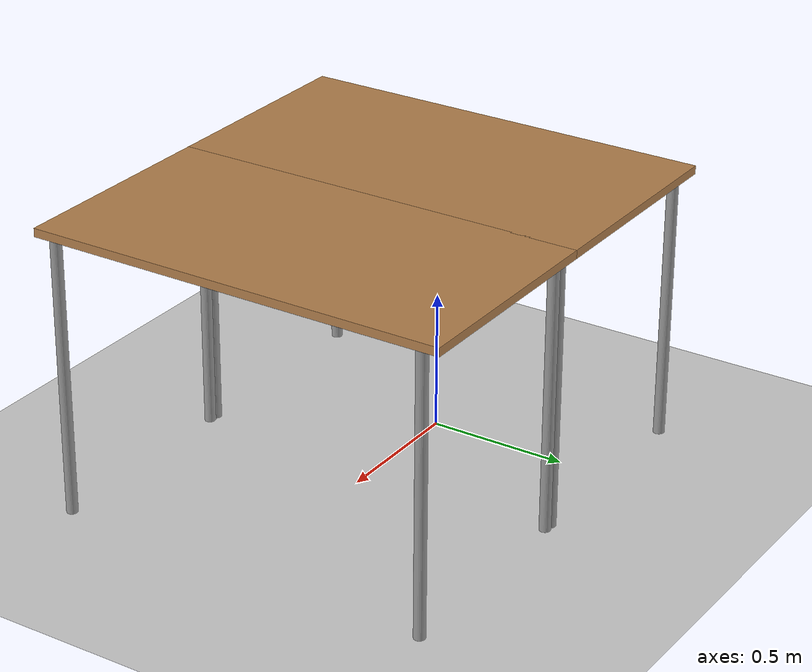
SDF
<sdf version="1.6">
 <world name="default">
  <light name="sun" type="directional">
   <pose>0 0 10 0 -0 0</pose>
   <diffuse>0.8 0.8 0.8 1</diffuse>
   <specular>0.2 0.2 0.2 1</specular>
   <attenuation>
    <range>1000</range>
    <constant>0.9</constant>
    <linear>0.01</linear>
    <quadratic>0.001</quadratic>
   </attenuation>
   <direction>-0.5 0.1 -0.9</direction>
  </light>
  <model name="ground_plane">
   <static>1</static>
   <link name="link">
    <collision name="collision">
     <geometry><plane><normal>0 0 1</normal><size>100 100</size></plane></geometry>
     <surface>
      <contact><collide_bitmask>65535</collide_bitmask></contact>
      <friction><ode><mu>100</mu><mu2>50</mu2></ode></friction>
     </surface>
    </collision>
    <visual name="visual">
     <cast_shadows>0</cast_shadows>
     <geometry><plane><normal>0 0 1</normal><size>100 100</size></plane></geometry>
     <material>
      <script><uri>file://media/materials/scripts/gazebo.material</uri><name>Gazebo/Grey</name></script>
     </material>
    </visual>
   </link>
  </model>
  <gravity>0 0 -9.8</gravity>
  <magnetic_field>6e-06 2.3e-05 -4.2e-05</magnetic_field>
  <atmosphere type="adiabatic"/>
  <physics name="default_physics" default="0" type="ode">
   <max_step_size>0.001</max_step_size>
   <real_time_factor>1</real_time_factor>
   <real_time_update_rate>1000</real_time_update_rate>
  </physics>
  <scene><ambient>0.4 0.4 0.4 1</ambient><background>0.7 0.7 0.7 1</background><shadows>1</shadows></scene>
  <audio><device>default</device></audio>
  <spherical_coordinates>
   <surface_model>EARTH_WGS84</surface_model>
   <latitude_deg>0</latitude_deg>
   <longitude_deg>0</longitude_deg>
   <elevation>0</elevation>
   <heading_deg>0</heading_deg>
  </spherical_coordinates>
  <model name="model_table2">
   <static>1</static>
   <link name="link">
    <collision name="surface">
     <pose>0 0 1 0 -0 0</pose>
     <geometry><box><size>1.5 0.8 0.03</size></box></geometry>
     <surface><friction><ode><mu>0.6</mu><mu2>0.6</mu2></ode></friction></surface>
    </collision>
    <visual name="visual1">
     <pose>0 0 1 0 -0 0</pose>
     <geometry><box><size>1.5 0.8 0.03</size></box></geometry>
     <material>
      <diffuse>1 1 1 1</diffuse>
      <script><uri>file://media/materials/scripts/gazebo.material</uri><name>Gazebo/Wood</name></script>
     </material>
    </visual>
    <collision name="front_left_leg">
     <pose>0.68 0.38 0.5 0 -0 0</pose>
     <geometry><cylinder><radius>0.02</radius><length>1</length></cylinder></geometry>
    </collision>
    <visual name="front_left_leg">
     <pose>0.68 0.38 0.5 0 -0 0</pose>
     <geometry><cylinder><radius>0.02</radius><length>1</length></cylinder></geometry>
     <material>
      <diffuse>0.5 0.5 0.5 1</diffuse>
      <script><uri>file://media/materials/scripts/gazebo.material</uri><name>Gazebo/Grey</name></script>
     </material>
    </visual>
    <collision name="front_right_leg">
     <pose>0.68 -0.38 0.5 0 -0 0</pose>
     <geometry><cylinder><radius>0.02</radius><length>1</length></cylinder></geometry>
    </collision>
    <visual name="front_right_leg">
     <pose>0.68 -0.38 0.5 0 -0 0</pose>
     <geometry><cylinder><radius>0.02</radius><length>1</length></cylinder></geometry>
     <material>
      <diffuse>0.5 0.5 0.5 1</diffuse>
      <script><uri>file://media/materials/scripts/gazebo.material</uri><name>Gazebo/Grey</name></script>
     </material>
    </visual>
    <collision name="back_right_leg">
     <pose>-0.68 -0.38 0.5 0 -0 0</pose>
     <geometry><cylinder><radius>0.02</radius><length>1</length></cylinder></geometry>
    </collision>
    <visual name="back_right_leg">
     <pose>-0.68 -0.38 0.5 0 -0 0</pose>
     <geometry><cylinder><radius>0.02</radius><length>1</length></cylinder></geometry>
     <material>
      <diffuse>0.5 0.5 0.5 1</diffuse>
      <script><uri>file://media/materials/scripts/gazebo.material</uri><name>Gazebo/Grey</name></script>
     </material>
    </visual>
    <collision name="back_left_leg">
     <pose>-0.68 0.38 0.5 0 -0 0</pose>
     <geometry><cylinder><radius>0.02</radius><length>1</length></cylinder></geometry>
    </collision>
    <visual name="back_left_leg">
     <pose>-0.68 0.38 0.5 0 -0 0</pose>
     <geometry><cylinder><radius>0.02</radius><length>1</length></cylinder></geometry>
     <material>
      <diffuse>0.5 0.5 0.5 1</diffuse>
      <script><uri>file://media/materials/scripts/gazebo.material</uri><name>Gazebo/Grey</name></script>
     </material>
    </visual>
   </link>
   <pose>0.794 0 0 0 -0 1.5708</pose>
  </model>
  <model name="model_table1">
   <static>1</static>
   <link name="link">
    <collision name="surface">
     <pose>0 0 1 0 -0 0</pose>
     <geometry><box><size>1.5 0.8 0.03</size></box></geometry>
     <surface><friction><ode><mu>0.6</mu><mu2>0.6</mu2></ode></friction></surface>
    </collision>
    <visual name="visual1">
     <pose>0 0 1 0 -0 0</pose>
     <geometry><box><size>1.5 0.8 0.03</size></box></geometry>
     <material>
      <diffuse>1 1 1 1</diffuse>
      <script><uri>file://media/materials/scripts/gazebo.material</uri><name>Gazebo/Wood</name></script>
     </material>
    </visual>
    <collision name="front_left_leg">
     <pose>0.68 0.38 0.5 0 -0 0</pose>
     <geometry><cylinder><radius>0.02</radius><length>1</length></cylinder></geometry>
    </collision>
    <visual name="front_left_leg">
     <pose>0.68 0.38 0.5 0 -0 0</pose>
     <geometry><cylinder><radius>0.02</radius><length>1</length></cylinder></geometry>
     <material>
      <diffuse>0.5 0.5 0.5 1</diffuse>
      <script><uri>file://media/materials/scripts/gazebo.material</uri><name>Gazebo/Grey</name></script>
     </material>
    </visual>
    <collision name="front_right_leg">
     <pose>0.68 -0.38 0.5 0 -0 0</pose>
     <geometry><cylinder><radius>0.02</radius><length>1</length></cylinder></geometry>
    </collision>
    <visual name="front_right_leg">
     <pose>0.68 -0.38 0.5 0 -0 0</pose>
     <geometry><cylinder><radius>0.02</radius><length>1</length></cylinder></geometry>
     <material>
      <diffuse>0.5 0.5 0.5 1</diffuse>
      <script><uri>file://media/materials/scripts/gazebo.material</uri><name>Gazebo/Grey</name></script>
     </material>
    </visual>
    <collision name="back_right_leg">
     <pose>-0.68 -0.38 0.5 0 -0 0</pose>
     <geometry><cylinder><radius>0.02</radius><length>1</length></cylinder></geometry>
    </collision>
    <visual name="back_right_leg">
     <pose>-0.68 -0.38 0.5 0 -0 0</pose>
     <geometry><cylinder><radius>0.02</radius><length>1</length></cylinder></geometry>
     <material>
      <diffuse>0.5 0.5 0.5 1</diffuse>
      <script><uri>file://media/materials/scripts/gazebo.material</uri><name>Gazebo/Grey</name></script>
     </material>
    </visual>
    <collision name="back_left_leg">
     <pose>-0.68 0.38 0.5 0 -0 0</pose>
     <geometry><cylinder><radius>0.02</radius><length>1</length></cylinder></geometry>
    </collision>
    <visual name="back_left_leg">
     <pose>-0.68 0.38 0.5 0 -0 0</pose>
     <geometry><cylinder><radius>0.02</radius><length>1</length></cylinder></geometry>
     <material>
      <diffuse>0.5 0.5 0.5 1</diffuse>
      <script><uri>file://media/materials/scripts/gazebo.material</uri><name>Gazebo/Grey</name></script>
     </material>
    </visual>
   </link>
   <pose>0 0 0 0 -0 1.5708</pose>
  </model>
  <light name="user_directional_light_0" type="directional">
   <pose>-9.39363 -9.22875 1 0 -0 0</pose>
   <diffuse>0.5 0.5 0.5 1</diffuse>
   <specular>0.1 0.1 0.1 1</specular>
   <direction>0.1 0.1 -0.9</direction>
   <attenuation>
    <range>20</range>
    <constant>0.5</constant>
    <linear>0.01</linear>
    <quadratic>0.001</quadratic>
   </attenuation>
  </light>
  <light name="user_directional_light_1" type="directional">
   <pose>-9.34577 9.38126 1 0 -0 0</pose>
   <diffuse>0.5 0.5 0.5 1</diffuse>
   <specular>0.1 0.1 0.1 1</specular>
   <direction>0.1 0.1 -0.9</direction>
   <attenuation>
    <range>20</range>
    <constant>0.5</constant>
    <linear>0.01</linear>
    <quadratic>0.001</quadratic>
   </attenuation>
  </light>
  <light name="user_directional_light_2" type="directional">
   <pose>9.27767 -9.30726 1 0 -0 0</pose>
   <diffuse>0.5 0.5 0.5 1</diffuse>
   <specular>0.1 0.1 0.1 1</specular>
   <direction>0.1 0.1 -0.9</direction>
   <attenuation>
    <range>20</range>
    <constant>0.5</constant>
    <linear>0.01</linear>
    <quadratic>0.001</quadratic>
   </attenuation>
  </light>
  <light name="user_directional_light_3" type="directional">
   <pose>9.2965 9.42915 1 0 -0 0</pose>
   <diffuse>0.5 0.5 0.5 1</diffuse>
   <specular>0.1 0.1 0.1 1</specular>
   <direction>0.1 0.1 -0.9</direction>
   <attenuation>
    <range>20</range>
    <constant>0.5</constant>
    <linear>0.01</linear>
    <quadratic>0.001</quadratic>
   </attenuation>
  </light>
  <light name="user_directional_light_4" type="directional">
   <pose>-0.024788 9.33896 1 0 -0 0</pose>
   <diffuse>0.5 0.5 0.5 1</diffuse>
   <specular>0.1 0.1 0.1 1</specular>
   <direction>0.1 0.1 -0.9</direction>
   <attenuation>
    <range>20</range>
    <constant>0.5</constant>
    <linear>0.01</linear>
    <quadratic>0.001</quadratic>
   </attenuation>
  </light>
  <light name="user_directional_light_5" type="directional">
   <pose>-0.038369 -9.23549 1 0 -0 0</pose>
   <diffuse>0.5 0.5 0.5 1</diffuse>
   <specular>0.1 0.1 0.1 1</specular>
   <direction>0.1 0.1 -0.9</direction>
   <attenuation>
    <range>20</range>
    <constant>0.5</constant>
    <linear>0.01</linear>
    <quadratic>0.001</quadratic>
   </attenuation>
  </light>
 </world>
</sdf>
